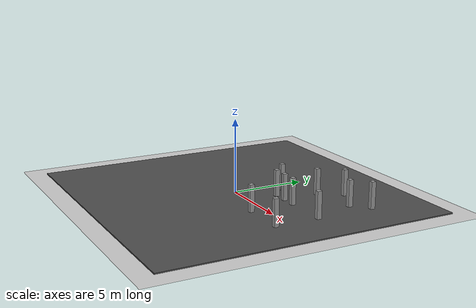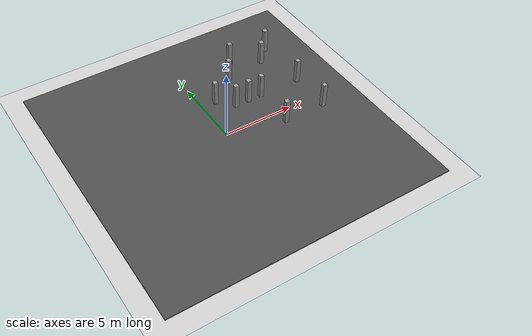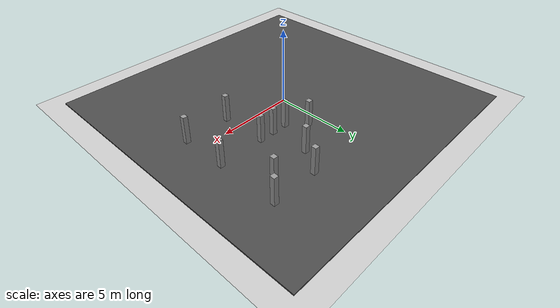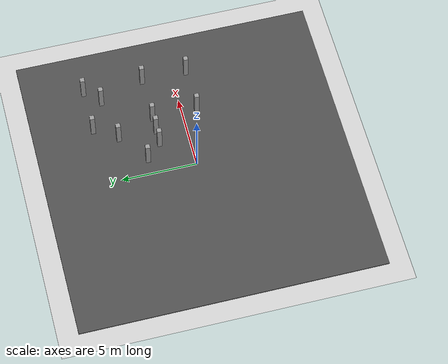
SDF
<sdf version="1.6">
 <world name="default">
  <light name="sun" type="directional">
   <pose>0 0 10 0 -0 0</pose>
   <diffuse>0.8 0.8 0.8 1</diffuse>
   <specular>0.1 0.1 0.1 1</specular>
   <attenuation>
    <range>1000</range>
    <constant>0.9</constant>
    <linear>0.01</linear>
    <quadratic>0.001</quadratic>
   </attenuation>
   <direction>-0.5 0.5 -1</direction>
  </light>
  <model name="ground_plane">
   <static>1</static>
   <link name="link">
    <collision name="collision">
     <geometry><plane><normal>0 0 1</normal><size>100 100</size></plane></geometry>
     <surface><friction><ode><mu>100</mu><mu2>50</mu2></ode></friction></surface>
    </collision>
    <visual name="visual">
     <cast_shadows>0</cast_shadows>
     <geometry><plane><normal>0 0 1</normal><size>100 100</size></plane></geometry>
     <material>
      <script><uri>file://media/materials/scripts/gazebo.material</uri><name>Gazebo/Grey</name></script>
     </material>
    </visual>
   </link>
  </model>
  <model name="asphalt_plane">
   <static>1</static>
   <link name="link">
    <collision name="collision"><geometry><box><size>20 20 0.1</size></box></geometry></collision>
    <visual name="visual">
     <cast_shadows>0</cast_shadows>
     <geometry><box><size>20 20 0.1</size></box></geometry>
     <material>
      <script>
       <uri>model://asphalt_plane/materials/scripts</uri>
       <uri>model://asphalt_plane/materials/textures</uri>
       <name>vrc/asphalt</name>
      </script>
     </material>
    </visual>
   </link>
  </model>
  <physics name="default_physics" default="0" type="ode">
   <ode>
    <solver>
     <type>quick</type>
     <iters>10</iters>
     <sor>1.3</sor>
     <use_dynamic_moi_rescaling>0</use_dynamic_moi_rescaling>
    </solver>
    <constraints>
     <cfm>0</cfm>
     <erp>0.2</erp>
     <contact_max_correcting_vel>100</contact_max_correcting_vel>
     <contact_surface_layer>0.001</contact_surface_layer>
    </constraints>
   </ode>
   <max_step_size>0.002</max_step_size>
   <real_time_factor>1</real_time_factor>
   <real_time_update_rate>500</real_time_update_rate>
  </physics>
  <gravity>0 0 -9.8066</gravity>
  <magnetic_field>6e-06 2.3e-05 -4.2e-05</magnetic_field>
  <atmosphere type="adiabatic"/>
  <scene><ambient>0.4 0.4 0.4 1</ambient><background>0.7 0.7 0.7 1</background><shadows>1</shadows></scene>
  <spherical_coordinates>
   <surface_model>EARTH_WGS84</surface_model>
   <latitude_deg>0</latitude_deg>
   <longitude_deg>0</longitude_deg>
   <elevation>0</elevation>
   <heading_deg>0</heading_deg>
  </spherical_coordinates>
  <model name="obstacle_box">
   <link name="link">
    <inertial>
     <mass>1</mass>
     <inertia>
      <ixx>0.166667</ixx>
      <ixy>0</ixy>
      <ixz>0</ixz>
      <iyy>0.166667</iyy>
      <iyz>0</iyz>
      <izz>0.166667</izz>
     </inertia>
    </inertial>
    <visual name="visual">
     <geometry><box><size>0.3 0.3 1.8</size></box></geometry>
     <material>
      <script><name>Gazebo/Grey</name><uri>file://media/materials/scripts/gazebo.material</uri></script>
      <ambient>0.3 0.3 0.3 1</ambient>
      <diffuse>0.7 0.7 0.7 1</diffuse>
      <specular>0.01 0.01 0.01 1</specular>
      <emissive>0 0 0 1</emissive>
      <shader type="vertex"><normal_map>__default__</normal_map></shader>
     </material>
    </visual>
    <collision name="collision">
     <geometry><box><size>0.3 0.3 1.8</size></box></geometry>
     <surface>
      <friction>
       <ode><mu>1</mu><mu2>1</mu2><fdir1>0 0 0</fdir1><slip1>0</slip1><slip2>0</slip2></ode>
       <torsional>
        <coefficient>1</coefficient>
        <patch_radius>0</patch_radius>
        <surface_radius>0</surface_radius>
        <use_patch_radius>1</use_patch_radius>
        <ode><slip>0</slip></ode>
       </torsional>
      </friction>
      <bounce><restitution_coefficient>0</restitution_coefficient><threshold>1e+06</threshold></bounce>
      <contact>
       <collide_without_contact>0</collide_without_contact>
       <collide_without_contact_bitmask>1</collide_without_contact_bitmask>
       <collide_bitmask>1</collide_bitmask>
       <ode>
        <soft_cfm>0</soft_cfm>
        <soft_erp>0.2</soft_erp>
        <kp>1e+13</kp>
        <kd>1</kd>
        <max_vel>0.01</max_vel>
        <min_depth>0</min_depth>
       </ode>
       <bullet>
        <split_impulse>1</split_impulse>
        <split_impulse_penetration_threshold>-0.01</split_impulse_penetration_threshold>
        <soft_cfm>0</soft_cfm>
        <soft_erp>0.2</soft_erp>
        <kp>1e+13</kp>
        <kd>1</kd>
       </bullet>
      </contact>
     </surface>
    </collision>
   </link>
   <static>0</static>
   <pose>3 4.50002 0.950001 -7e-06 2e-06 0.004717</pose>
  </model>
  <model name="obstacle_box_0">
   <link name="link">
    <inertial>
     <mass>1</mass>
     <inertia>
      <ixx>0.166667</ixx>
      <ixy>0</ixy>
      <ixz>0</ixz>
      <iyy>0.166667</iyy>
      <iyz>0</iyz>
      <izz>0.166667</izz>
     </inertia>
    </inertial>
    <visual name="visual">
     <geometry><box><size>0.3 0.3 1.8</size></box></geometry>
     <material>
      <script><name>Gazebo/Grey</name><uri>file://media/materials/scripts/gazebo.material</uri></script>
      <ambient>0.3 0.3 0.3 1</ambient>
      <diffuse>0.7 0.7 0.7 1</diffuse>
      <specular>0.01 0.01 0.01 1</specular>
      <emissive>0 0 0 1</emissive>
      <shader type="vertex"><normal_map>__default__</normal_map></shader>
     </material>
    </visual>
    <collision name="collision">
     <geometry><box><size>0.3 0.3 1.8</size></box></geometry>
     <surface>
      <friction>
       <ode><mu>1</mu><mu2>1</mu2><fdir1>0 0 0</fdir1><slip1>0</slip1><slip2>0</slip2></ode>
       <torsional>
        <coefficient>1</coefficient>
        <patch_radius>0</patch_radius>
        <surface_radius>0</surface_radius>
        <use_patch_radius>1</use_patch_radius>
        <ode><slip>0</slip></ode>
       </torsional>
      </friction>
      <bounce><restitution_coefficient>0</restitution_coefficient><threshold>1e+06</threshold></bounce>
      <contact>
       <collide_without_contact>0</collide_without_contact>
       <collide_without_contact_bitmask>1</collide_without_contact_bitmask>
       <collide_bitmask>1</collide_bitmask>
       <ode>
        <soft_cfm>0</soft_cfm>
        <soft_erp>0.2</soft_erp>
        <kp>1e+13</kp>
        <kd>1</kd>
        <max_vel>0.01</max_vel>
        <min_depth>0</min_depth>
       </ode>
       <bullet>
        <split_impulse>1</split_impulse>
        <split_impulse_penetration_threshold>-0.01</split_impulse_penetration_threshold>
        <soft_cfm>0</soft_cfm>
        <soft_erp>0.2</soft_erp>
        <kp>1e+13</kp>
        <kd>1</kd>
       </bullet>
      </contact>
     </surface>
    </collision>
   </link>
   <static>0</static>
   <pose>3.99991 -0.999835 0.95 2e-06 -5e-06 -0.045018</pose>
  </model>
  <model name="obstacle_box_1">
   <link name="link">
    <inertial>
     <mass>1</mass>
     <inertia>
      <ixx>0.166667</ixx>
      <ixy>0</ixy>
      <ixz>0</ixz>
      <iyy>0.166667</iyy>
      <iyz>0</iyz>
      <izz>0.166667</izz>
     </inertia>
    </inertial>
    <visual name="visual">
     <geometry><box><size>0.3 0.3 1.8</size></box></geometry>
     <material>
      <script><name>Gazebo/Grey</name><uri>file://media/materials/scripts/gazebo.material</uri></script>
      <ambient>0.3 0.3 0.3 1</ambient>
      <diffuse>0.7 0.7 0.7 1</diffuse>
      <specular>0.01 0.01 0.01 1</specular>
      <emissive>0 0 0 1</emissive>
      <shader type="vertex"><normal_map>__default__</normal_map></shader>
     </material>
    </visual>
    <collision name="collision">
     <geometry><box><size>0.3 0.3 1.8</size></box></geometry>
     <surface>
      <friction>
       <ode><mu>1</mu><mu2>1</mu2><fdir1>0 0 0</fdir1><slip1>0</slip1><slip2>0</slip2></ode>
       <torsional>
        <coefficient>1</coefficient>
        <patch_radius>0</patch_radius>
        <surface_radius>0</surface_radius>
        <use_patch_radius>1</use_patch_radius>
        <ode><slip>0</slip></ode>
       </torsional>
      </friction>
      <bounce><restitution_coefficient>0</restitution_coefficient><threshold>1e+06</threshold></bounce>
      <contact>
       <collide_without_contact>0</collide_without_contact>
       <collide_without_contact_bitmask>1</collide_without_contact_bitmask>
       <collide_bitmask>1</collide_bitmask>
       <ode>
        <soft_cfm>0</soft_cfm>
        <soft_erp>0.2</soft_erp>
        <kp>1e+13</kp>
        <kd>1</kd>
        <max_vel>0.01</max_vel>
        <min_depth>0</min_depth>
       </ode>
       <bullet>
        <split_impulse>1</split_impulse>
        <split_impulse_penetration_threshold>-0.01</split_impulse_penetration_threshold>
        <soft_cfm>0</soft_cfm>
        <soft_erp>0.2</soft_erp>
        <kp>1e+13</kp>
        <kd>1</kd>
       </bullet>
      </contact>
     </surface>
    </collision>
   </link>
   <static>0</static>
   <pose>6.99989 -0.99985 0.949999 -1e-05 -2e-06 -0.044104</pose>
  </model>
  <model name="obstacle_box_2">
   <link name="link">
    <inertial>
     <mass>1</mass>
     <inertia>
      <ixx>0.166667</ixx>
      <ixy>0</ixy>
      <ixz>0</ixz>
      <iyy>0.166667</iyy>
      <iyz>0</iyz>
      <izz>0.166667</izz>
     </inertia>
    </inertial>
    <visual name="visual">
     <geometry><box><size>0.3 0.3 1.8</size></box></geometry>
     <material>
      <script><name>Gazebo/Grey</name><uri>file://media/materials/scripts/gazebo.material</uri></script>
      <ambient>0.3 0.3 0.3 1</ambient>
      <diffuse>0.7 0.7 0.7 1</diffuse>
      <specular>0.01 0.01 0.01 1</specular>
      <emissive>0 0 0 1</emissive>
      <shader type="vertex"><normal_map>__default__</normal_map></shader>
     </material>
    </visual>
    <collision name="collision">
     <geometry><box><size>0.3 0.3 1.8</size></box></geometry>
     <surface>
      <friction>
       <ode><mu>1</mu><mu2>1</mu2><fdir1>0 0 0</fdir1><slip1>0</slip1><slip2>0</slip2></ode>
       <torsional>
        <coefficient>1</coefficient>
        <patch_radius>0</patch_radius>
        <surface_radius>0</surface_radius>
        <use_patch_radius>1</use_patch_radius>
        <ode><slip>0</slip></ode>
       </torsional>
      </friction>
      <bounce><restitution_coefficient>0</restitution_coefficient><threshold>1e+06</threshold></bounce>
      <contact>
       <collide_without_contact>0</collide_without_contact>
       <collide_without_contact_bitmask>1</collide_without_contact_bitmask>
       <collide_bitmask>1</collide_bitmask>
       <ode>
        <soft_cfm>0</soft_cfm>
        <soft_erp>0.2</soft_erp>
        <kp>1e+13</kp>
        <kd>1</kd>
        <max_vel>0.01</max_vel>
        <min_depth>0</min_depth>
       </ode>
       <bullet>
        <split_impulse>1</split_impulse>
        <split_impulse_penetration_threshold>-0.01</split_impulse_penetration_threshold>
        <soft_cfm>0</soft_cfm>
        <soft_erp>0.2</soft_erp>
        <kp>1e+13</kp>
        <kd>1</kd>
       </bullet>
      </contact>
     </surface>
    </collision>
   </link>
   <static>0</static>
   <pose>6.99992 2.00012 0.949999 2e-06 -2e-06 -0.044157</pose>
  </model>
  <model name="obstacle_box_3">
   <link name="link">
    <inertial>
     <mass>1</mass>
     <inertia>
      <ixx>0.166667</ixx>
      <ixy>0</ixy>
      <ixz>0</ixz>
      <iyy>0.166667</iyy>
      <iyz>0</iyz>
      <izz>0.166667</izz>
     </inertia>
    </inertial>
    <visual name="visual">
     <geometry><box><size>0.3 0.3 1.8</size></box></geometry>
     <material>
      <script><name>Gazebo/Grey</name><uri>file://media/materials/scripts/gazebo.material</uri></script>
      <ambient>0.3 0.3 0.3 1</ambient>
      <diffuse>0.7 0.7 0.7 1</diffuse>
      <specular>0.01 0.01 0.01 1</specular>
      <emissive>0 0 0 1</emissive>
      <shader type="vertex"><normal_map>__default__</normal_map></shader>
     </material>
    </visual>
    <collision name="collision">
     <geometry><box><size>0.3 0.3 1.8</size></box></geometry>
     <surface>
      <friction>
       <ode><mu>1</mu><mu2>1</mu2><fdir1>0 0 0</fdir1><slip1>0</slip1><slip2>0</slip2></ode>
       <torsional>
        <coefficient>1</coefficient>
        <patch_radius>0</patch_radius>
        <surface_radius>0</surface_radius>
        <use_patch_radius>1</use_patch_radius>
        <ode><slip>0</slip></ode>
       </torsional>
      </friction>
      <bounce><restitution_coefficient>0</restitution_coefficient><threshold>1e+06</threshold></bounce>
      <contact>
       <collide_without_contact>0</collide_without_contact>
       <collide_without_contact_bitmask>1</collide_without_contact_bitmask>
       <collide_bitmask>1</collide_bitmask>
       <ode>
        <soft_cfm>0</soft_cfm>
        <soft_erp>0.2</soft_erp>
        <kp>1e+13</kp>
        <kd>1</kd>
        <max_vel>0.01</max_vel>
        <min_depth>0</min_depth>
       </ode>
       <bullet>
        <split_impulse>1</split_impulse>
        <split_impulse_penetration_threshold>-0.01</split_impulse_penetration_threshold>
        <soft_cfm>0</soft_cfm>
        <soft_erp>0.2</soft_erp>
        <kp>1e+13</kp>
        <kd>1</kd>
       </bullet>
      </contact>
     </surface>
    </collision>
   </link>
   <static>0</static>
   <pose>6.99986 6.00007 0.949999 3e-06 0 -0.04375</pose>
  </model>
  <model name="obstacle_box_4">
   <link name="link">
    <inertial>
     <mass>1</mass>
     <inertia>
      <ixx>0.166667</ixx>
      <ixy>0</ixy>
      <ixz>0</ixz>
      <iyy>0.166667</iyy>
      <iyz>0</iyz>
      <izz>0.166667</izz>
     </inertia>
    </inertial>
    <visual name="visual">
     <geometry><box><size>0.3 0.3 1.8</size></box></geometry>
     <material>
      <script><name>Gazebo/Grey</name><uri>file://media/materials/scripts/gazebo.material</uri></script>
      <ambient>0.3 0.3 0.3 1</ambient>
      <diffuse>0.7 0.7 0.7 1</diffuse>
      <specular>0.01 0.01 0.01 1</specular>
      <emissive>0 0 0 1</emissive>
      <shader type="vertex"><normal_map>__default__</normal_map></shader>
     </material>
    </visual>
    <collision name="collision">
     <geometry><box><size>0.3 0.3 1.8</size></box></geometry>
     <surface>
      <friction>
       <ode><mu>1</mu><mu2>1</mu2><fdir1>0 0 0</fdir1><slip1>0</slip1><slip2>0</slip2></ode>
       <torsional>
        <coefficient>1</coefficient>
        <patch_radius>0</patch_radius>
        <surface_radius>0</surface_radius>
        <use_patch_radius>1</use_patch_radius>
        <ode><slip>0</slip></ode>
       </torsional>
      </friction>
      <bounce><restitution_coefficient>0</restitution_coefficient><threshold>1e+06</threshold></bounce>
      <contact>
       <collide_without_contact>0</collide_without_contact>
       <collide_without_contact_bitmask>1</collide_without_contact_bitmask>
       <collide_bitmask>1</collide_bitmask>
       <ode>
        <soft_cfm>0</soft_cfm>
        <soft_erp>0.2</soft_erp>
        <kp>1e+13</kp>
        <kd>1</kd>
        <max_vel>0.01</max_vel>
        <min_depth>0</min_depth>
       </ode>
       <bullet>
        <split_impulse>1</split_impulse>
        <split_impulse_penetration_threshold>-0.01</split_impulse_penetration_threshold>
        <soft_cfm>0</soft_cfm>
        <soft_erp>0.2</soft_erp>
        <kp>1e+13</kp>
        <kd>1</kd>
       </bullet>
      </contact>
     </surface>
    </collision>
   </link>
   <static>0</static>
   <pose>3.99996 6.00004 0.950002 -1e-06 1.6e-05 -0.038865</pose>
  </model>
  <model name="obstacle_box_5">
   <link name="link">
    <inertial>
     <mass>1</mass>
     <inertia>
      <ixx>0.166667</ixx>
      <ixy>0</ixy>
      <ixz>0</ixz>
      <iyy>0.166667</iyy>
      <iyz>0</iyz>
      <izz>0.166667</izz>
     </inertia>
    </inertial>
    <visual name="visual">
     <geometry><box><size>0.3 0.3 1.8</size></box></geometry>
     <material>
      <script><name>Gazebo/Grey</name><uri>file://media/materials/scripts/gazebo.material</uri></script>
      <ambient>0.3 0.3 0.3 1</ambient>
      <diffuse>0.7 0.7 0.7 1</diffuse>
      <specular>0.01 0.01 0.01 1</specular>
      <emissive>0 0 0 1</emissive>
      <shader type="vertex"><normal_map>__default__</normal_map></shader>
     </material>
    </visual>
    <collision name="collision">
     <geometry><box><size>0.3 0.3 1.8</size></box></geometry>
     <surface>
      <friction>
       <ode><mu>1</mu><mu2>1</mu2><fdir1>0 0 0</fdir1><slip1>0</slip1><slip2>0</slip2></ode>
       <torsional>
        <coefficient>1</coefficient>
        <patch_radius>0</patch_radius>
        <surface_radius>0</surface_radius>
        <use_patch_radius>1</use_patch_radius>
        <ode><slip>0</slip></ode>
       </torsional>
      </friction>
      <bounce><restitution_coefficient>0</restitution_coefficient><threshold>1e+06</threshold></bounce>
      <contact>
       <collide_without_contact>0</collide_without_contact>
       <collide_without_contact_bitmask>1</collide_without_contact_bitmask>
       <collide_bitmask>1</collide_bitmask>
       <ode>
        <soft_cfm>0</soft_cfm>
        <soft_erp>0.2</soft_erp>
        <kp>1e+13</kp>
        <kd>1</kd>
        <max_vel>0.01</max_vel>
        <min_depth>0</min_depth>
       </ode>
       <bullet>
        <split_impulse>1</split_impulse>
        <split_impulse_penetration_threshold>-0.01</split_impulse_penetration_threshold>
        <soft_cfm>0</soft_cfm>
        <soft_erp>0.2</soft_erp>
        <kp>1e+13</kp>
        <kd>1</kd>
       </bullet>
      </contact>
     </surface>
    </collision>
   </link>
   <static>0</static>
   <pose>5.99994 5.00006 0.950001 3e-06 1e-06 -0.037121</pose>
  </model>
  <model name="obstacle_box_6">
   <link name="link">
    <inertial>
     <mass>1</mass>
     <inertia>
      <ixx>0.166667</ixx>
      <ixy>0</ixy>
      <ixz>0</ixz>
      <iyy>0.166667</iyy>
      <iyz>0</iyz>
      <izz>0.166667</izz>
     </inertia>
    </inertial>
    <visual name="visual">
     <geometry><box><size>0.3 0.3 1.8</size></box></geometry>
     <material>
      <script><name>Gazebo/Grey</name><uri>file://media/materials/scripts/gazebo.material</uri></script>
      <ambient>0.3 0.3 0.3 1</ambient>
      <diffuse>0.7 0.7 0.7 1</diffuse>
      <specular>0.01 0.01 0.01 1</specular>
      <emissive>0 0 0 1</emissive>
      <shader type="vertex"><normal_map>__default__</normal_map></shader>
     </material>
    </visual>
    <collision name="collision">
     <geometry><box><size>0.3 0.3 1.8</size></box></geometry>
     <surface>
      <friction>
       <ode><mu>1</mu><mu2>1</mu2><fdir1>0 0 0</fdir1><slip1>0</slip1><slip2>0</slip2></ode>
       <torsional>
        <coefficient>1</coefficient>
        <patch_radius>0</patch_radius>
        <surface_radius>0</surface_radius>
        <use_patch_radius>1</use_patch_radius>
        <ode><slip>0</slip></ode>
       </torsional>
      </friction>
      <bounce><restitution_coefficient>0</restitution_coefficient><threshold>1e+06</threshold></bounce>
      <contact>
       <collide_without_contact>0</collide_without_contact>
       <collide_without_contact_bitmask>1</collide_without_contact_bitmask>
       <collide_bitmask>1</collide_bitmask>
       <ode>
        <soft_cfm>0</soft_cfm>
        <soft_erp>0.2</soft_erp>
        <kp>1e+13</kp>
        <kd>1</kd>
        <max_vel>0.01</max_vel>
        <min_depth>0</min_depth>
       </ode>
       <bullet>
        <split_impulse>1</split_impulse>
        <split_impulse_penetration_threshold>-0.01</split_impulse_penetration_threshold>
        <soft_cfm>0</soft_cfm>
        <soft_erp>0.2</soft_erp>
        <kp>1e+13</kp>
        <kd>1</kd>
       </bullet>
      </contact>
     </surface>
    </collision>
   </link>
   <static>0</static>
   <pose>1.99996 2.00005 0.950001 7e-06 -0 -0.039689</pose>
  </model>
  <model name="obstacle_box_7">
   <link name="link">
    <inertial>
     <mass>1</mass>
     <inertia>
      <ixx>0.166667</ixx>
      <ixy>0</ixy>
      <ixz>0</ixz>
      <iyy>0.166667</iyy>
      <iyz>0</iyz>
      <izz>0.166667</izz>
     </inertia>
    </inertial>
    <visual name="visual">
     <geometry><box><size>0.3 0.3 1.8</size></box></geometry>
     <material>
      <script><name>Gazebo/Grey</name><uri>file://media/materials/scripts/gazebo.material</uri></script>
      <ambient>0.3 0.3 0.3 1</ambient>
      <diffuse>0.7 0.7 0.7 1</diffuse>
      <specular>0.01 0.01 0.01 1</specular>
      <emissive>0 0 0 1</emissive>
      <shader type="vertex"><normal_map>__default__</normal_map></shader>
     </material>
    </visual>
    <collision name="collision">
     <geometry><box><size>0.3 0.3 1.8</size></box></geometry>
     <surface>
      <friction>
       <ode><mu>1</mu><mu2>1</mu2><fdir1>0 0 0</fdir1><slip1>0</slip1><slip2>0</slip2></ode>
       <torsional>
        <coefficient>1</coefficient>
        <patch_radius>0</patch_radius>
        <surface_radius>0</surface_radius>
        <use_patch_radius>1</use_patch_radius>
        <ode><slip>0</slip></ode>
       </torsional>
      </friction>
      <bounce><restitution_coefficient>0</restitution_coefficient><threshold>1e+06</threshold></bounce>
      <contact>
       <collide_without_contact>0</collide_without_contact>
       <collide_without_contact_bitmask>1</collide_without_contact_bitmask>
       <collide_bitmask>1</collide_bitmask>
       <ode>
        <soft_cfm>0</soft_cfm>
        <soft_erp>0.2</soft_erp>
        <kp>1e+13</kp>
        <kd>1</kd>
        <max_vel>0.01</max_vel>
        <min_depth>0</min_depth>
       </ode>
       <bullet>
        <split_impulse>1</split_impulse>
        <split_impulse_penetration_threshold>-0.01</split_impulse_penetration_threshold>
        <soft_cfm>0</soft_cfm>
        <soft_erp>0.2</soft_erp>
        <kp>1e+13</kp>
        <kd>1</kd>
       </bullet>
      </contact>
     </surface>
    </collision>
   </link>
   <static>0</static>
   <pose>3.99994 2.00003 0.949963 -4e-06 -8e-06 -0.039048</pose>
  </model>
  <model name="obstacle_box_8">
   <link name="link">
    <inertial>
     <mass>1</mass>
     <inertia>
      <ixx>0.166667</ixx>
      <ixy>0</ixy>
      <ixz>0</ixz>
      <iyy>0.166667</iyy>
      <iyz>0</iyz>
      <izz>0.166667</izz>
     </inertia>
    </inertial>
    <visual name="visual">
     <geometry><box><size>0.3 0.3 1.8</size></box></geometry>
     <material>
      <script><name>Gazebo/Grey</name><uri>file://media/materials/scripts/gazebo.material</uri></script>
      <ambient>0.3 0.3 0.3 1</ambient>
      <diffuse>0.7 0.7 0.7 1</diffuse>
      <specular>0.01 0.01 0.01 1</specular>
      <emissive>0 0 0 1</emissive>
      <shader type="vertex"><normal_map>__default__</normal_map></shader>
     </material>
    </visual>
    <collision name="collision">
     <geometry><box><size>0.3 0.3 1.8</size></box></geometry>
     <surface>
      <friction>
       <ode><mu>1</mu><mu2>1</mu2><fdir1>0 0 0</fdir1><slip1>0</slip1><slip2>0</slip2></ode>
       <torsional>
        <coefficient>1</coefficient>
        <patch_radius>0</patch_radius>
        <surface_radius>0</surface_radius>
        <use_patch_radius>1</use_patch_radius>
        <ode><slip>0</slip></ode>
       </torsional>
      </friction>
      <bounce><restitution_coefficient>0</restitution_coefficient><threshold>1e+06</threshold></bounce>
      <contact>
       <collide_without_contact>0</collide_without_contact>
       <collide_without_contact_bitmask>1</collide_without_contact_bitmask>
       <collide_bitmask>1</collide_bitmask>
       <ode>
        <soft_cfm>0</soft_cfm>
        <soft_erp>0.2</soft_erp>
        <kp>1e+13</kp>
        <kd>1</kd>
        <max_vel>0.01</max_vel>
        <min_depth>0</min_depth>
       </ode>
       <bullet>
        <split_impulse>1</split_impulse>
        <split_impulse_penetration_threshold>-0.01</split_impulse_penetration_threshold>
        <soft_cfm>0</soft_cfm>
        <soft_erp>0.2</soft_erp>
        <kp>1e+13</kp>
        <kd>1</kd>
       </bullet>
      </contact>
     </surface>
    </collision>
   </link>
   <static>0</static>
   <pose>2.99997 2.00002 0.95 -1e-06 1e-06 -0.038812</pose>
  </model>
  <model name="obstacle_box_9">
   <link name="link">
    <inertial>
     <mass>1</mass>
     <inertia>
      <ixx>0.166667</ixx>
      <ixy>0</ixy>
      <ixz>0</ixz>
      <iyy>0.166667</iyy>
      <iyz>0</iyz>
      <izz>0.166667</izz>
     </inertia>
    </inertial>
    <visual name="visual">
     <geometry><box><size>0.3 0.3 1.8</size></box></geometry>
     <material>
      <script><name>Gazebo/Grey</name><uri>file://media/materials/scripts/gazebo.material</uri></script>
      <ambient>0.3 0.3 0.3 1</ambient>
      <diffuse>0.7 0.7 0.7 1</diffuse>
      <specular>0.01 0.01 0.01 1</specular>
      <emissive>0 0 0 1</emissive>
      <shader type="vertex"><normal_map>__default__</normal_map></shader>
     </material>
    </visual>
    <collision name="collision">
     <geometry><box><size>0.3 0.3 1.8</size></box></geometry>
     <surface>
      <friction>
       <ode><mu>1</mu><mu2>1</mu2><fdir1>0 0 0</fdir1><slip1>0</slip1><slip2>0</slip2></ode>
       <torsional>
        <coefficient>1</coefficient>
        <patch_radius>0</patch_radius>
        <surface_radius>0</surface_radius>
        <use_patch_radius>1</use_patch_radius>
        <ode><slip>0</slip></ode>
       </torsional>
      </friction>
      <bounce><restitution_coefficient>0</restitution_coefficient><threshold>1e+06</threshold></bounce>
      <contact>
       <collide_without_contact>0</collide_without_contact>
       <collide_without_contact_bitmask>1</collide_without_contact_bitmask>
       <collide_bitmask>1</collide_bitmask>
       <ode>
        <soft_cfm>0</soft_cfm>
        <soft_erp>0.2</soft_erp>
        <kp>1e+13</kp>
        <kd>1</kd>
        <max_vel>0.01</max_vel>
        <min_depth>0</min_depth>
       </ode>
       <bullet>
        <split_impulse>1</split_impulse>
        <split_impulse_penetration_threshold>-0.01</split_impulse_penetration_threshold>
        <soft_cfm>0</soft_cfm>
        <soft_erp>0.2</soft_erp>
        <kp>1e+13</kp>
        <kd>1</kd>
       </bullet>
      </contact>
     </surface>
    </collision>
   </link>
   <static>0</static>
   <pose>0.999978 3.00004 0.950001 -6e-06 -4e-06 -0.045485</pose>
  </model>
 </world>
</sdf>
